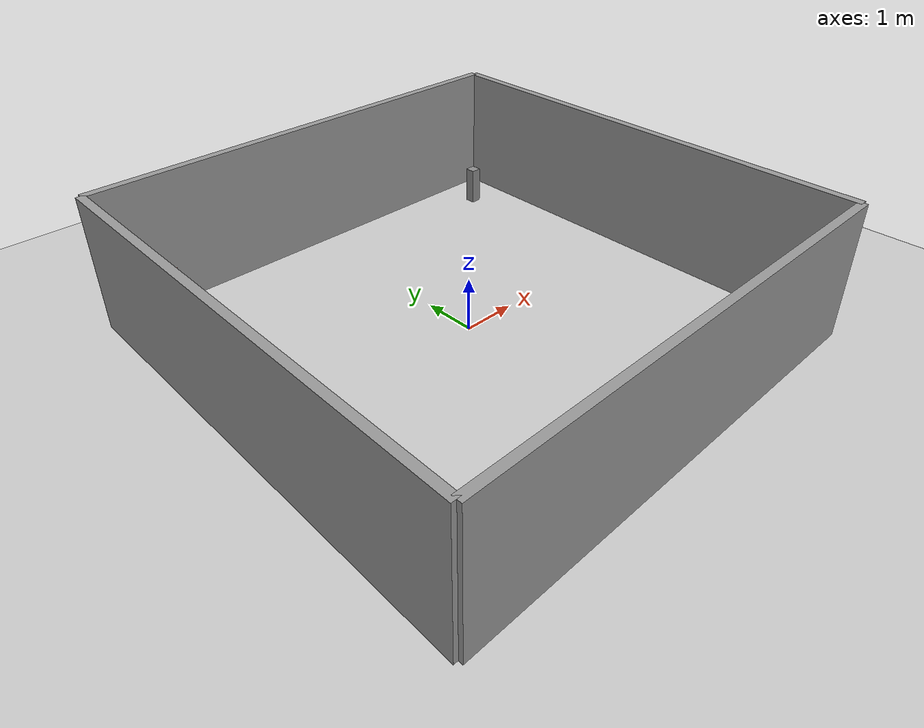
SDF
<sdf version="1.7">
 <world name="default">
  <plugin name="socnav_plugin" filename="libSocNavPlugin.so">
   <robot_name>robot</robot_name>
   <trajectory_file>/home/hunav_gz_classic_ws/SocNav3_trajectories/src5/000003370.json</trajectory_file>
   <human_slots>3</human_slots>
   <goal_angle_mesh>
    <angle_threshold>0.523598775598</angle_threshold>
    <uri>/home/hunav_gz_classic_ws/src/socnav_gazebo_reproducer/meshes/000003370_goal_angle_00.stl</uri>
   </goal_angle_mesh>
  </plugin>
  <light name="sun" type="directional">
   <pose>0 0 10 0 -0 0</pose>
   <diffuse>0.8 0.8 0.8 1</diffuse>
   <specular>0.2 0.2 0.2 1</specular>
   <attenuation>
    <range>1000</range>
    <constant>0.9</constant>
    <linear>0.01</linear>
    <quadratic>0.001</quadratic>
   </attenuation>
   <direction>-0.5 0.1 -0.9</direction>
   <spot><inner_angle>0</inner_angle><outer_angle>0</outer_angle><falloff>0</falloff></spot>
  </light>
  <model name="ground_plane">
   <static>1</static>
   <link name="link">
    <collision name="collision">
     <geometry><plane><normal>0 0 1</normal><size>100 100</size></plane></geometry>
     <surface><friction><ode><mu>100</mu><mu2>50</mu2></ode></friction></surface>
    </collision>
    <visual name="visual">
     <cast_shadows>0</cast_shadows>
     <geometry><plane><normal>0 0 1</normal><size>100 100</size></plane></geometry>
     <material>
      <script><uri>file://media/materials/scripts/kitchen.material</uri><name>Kitchen/CounterTop_H</name></script>
     </material>
    </visual>
   </link>
  </model>
  <gravity>0 0 -9.8</gravity>
  <magnetic_field>6e-06 2.3e-05 -4.2e-05</magnetic_field>
  <atmosphere type="adiabatic"/>
  <physics type="ode">
   <max_step_size>0.001</max_step_size>
   <real_time_factor>1</real_time_factor>
   <real_time_update_rate>1000</real_time_update_rate>
  </physics>
  <scene><ambient>0.4 0.4 0.4 1</ambient><background>0.7 0.7 0.7 1</background><shadows>1</shadows></scene>
  <audio><device>default</device></audio>
  <spherical_coordinates>
   <surface_model>EARTH_WGS84</surface_model>
   <latitude_deg>0</latitude_deg>
   <longitude_deg>0</longitude_deg>
   <elevation>0</elevation>
   <heading_deg>0</heading_deg>
  </spherical_coordinates>
  <model name="robot">
   <pose>-3.6999877561191363 3.6999875420968458 0.5 0 0 -0.8000960350036621</pose>
   <link name="link">
    <collision name="collision">
     <geometry><cylinder><radius>0.3499999940395355</radius><length>1.0</length></cylinder></geometry>
    </collision>
    <visual name="visual">
     <geometry><cylinder><radius>0.3499999940395355</radius><length>1.0</length></cylinder></geometry>
     <material><ambient>0.1 0.4 0.8 1</ambient><diffuse>0.1 0.4 0.8 1</diffuse></material>
    </visual>
    <visual name="robot_top">
     <pose>0 0 0.58 0 0 0</pose>
     <geometry><cylinder><radius>0.18899999678134918</radius><length>0.16</length></cylinder></geometry>
     <material><ambient>0.04 0.08 0.12 1</ambient><diffuse>0.04 0.08 0.12 1</diffuse></material>
    </visual>
    <visual name="robot_front">
     <pose>0.22049999624490738 0 0.44 0 0 0</pose>
     <geometry><box><size>0.12599999785423277 0.4479999923706055 0.24</size></box></geometry>
     <material><ambient>0.9 0.12 0.08 1</ambient><diffuse>0.9 0.12 0.08 1</diffuse></material>
    </visual>
    <visual name="robot_sensor">
     <pose>0 0 0.78 0 0 0</pose>
     <geometry><cylinder><radius>0.036749999374151236</radius><length>0.24</length></cylinder></geometry>
     <material><ambient>0.1 0.9 0.9 1</ambient><diffuse>0.1 0.9 0.9 1</diffuse></material>
    </visual>
   </link>
  </model>
  <model name="static_object_6">
   <static>true</static>
   <pose>3.5 3.5 0.375 0 0 0.0</pose>
   <link name="link">
    <collision name="collision"><geometry><box><size>0.2 0.2 0.75</size></box></geometry></collision>
    <visual name="visual">
     <geometry><box><size>0.2 0.2 0.75</size></box></geometry>
     <material><ambient>0.55 0.55 0.55 1</ambient><diffuse>0.55 0.55 0.55 1</diffuse></material>
    </visual>
   </link>
  </model>
  <model name="static_object_7">
   <static>true</static>
   <pose>-3.5 -3.5 0.375 0 0 0.0</pose>
   <link name="link">
    <collision name="collision"><geometry><box><size>0.2 0.2 0.75</size></box></geometry></collision>
    <visual name="visual">
     <geometry><box><size>0.2 0.2 0.75</size></box></geometry>
     <material><ambient>0.55 0.55 0.55 1</ambient><diffuse>0.55 0.55 0.55 1</diffuse></material>
    </visual>
   </link>
  </model>
  <model name="simple_world_test">
   <link name="Wall_0">
    <collision name="Wall_0_Collision">
     <geometry><box><size>8.7 0.15 2.5</size></box></geometry>
     <pose>0 0 1.25 0 -0 0</pose>
    </collision>
    <visual name="Wall_0_Visual">
     <pose>0 0 1.25 0 -0 0</pose>
     <geometry><box><size>8.7 0.15 2.5</size></box></geometry>
     <material>
      <script><uri>file://media/materials/scripts/gazebo.material</uri><name>Gazebo/Grey</name></script>
      <ambient>1 1 1 1</ambient>
     </material>
     <meta><layer>0</layer></meta>
    </visual>
    <pose>4.35 0.0 0 0 -0 1.5707963267948966</pose>
   </link>
   <link name="Wall_1">
    <collision name="Wall_1_Collision">
     <geometry><box><size>8.7 0.15 2.5</size></box></geometry>
     <pose>0 0 1.25 0 -0 0</pose>
    </collision>
    <visual name="Wall_1_Visual">
     <pose>0 0 1.25 0 -0 0</pose>
     <geometry><box><size>8.7 0.15 2.5</size></box></geometry>
     <material>
      <script><uri>file://media/materials/scripts/gazebo.material</uri><name>Gazebo/Grey</name></script>
      <ambient>1 1 1 1</ambient>
     </material>
     <meta><layer>0</layer></meta>
    </visual>
    <pose>-4.35 0.0 0 0 -0 1.5707963267948966</pose>
   </link>
   <link name="Wall_2">
    <collision name="Wall_2_Collision">
     <geometry><box><size>8.7 0.15 2.5</size></box></geometry>
     <pose>0 0 1.25 0 -0 0</pose>
    </collision>
    <visual name="Wall_2_Visual">
     <pose>0 0 1.25 0 -0 0</pose>
     <geometry><box><size>8.7 0.15 2.5</size></box></geometry>
     <material>
      <script><uri>file://media/materials/scripts/gazebo.material</uri><name>Gazebo/Grey</name></script>
      <ambient>1 1 1 1</ambient>
     </material>
     <meta><layer>0</layer></meta>
    </visual>
    <pose>0.0 4.35 0 0 -0 0.0</pose>
   </link>
   <link name="Wall_3">
    <collision name="Wall_3_Collision">
     <geometry><box><size>8.7 0.15 2.5</size></box></geometry>
     <pose>0 0 1.25 0 -0 0</pose>
    </collision>
    <visual name="Wall_3_Visual">
     <pose>0 0 1.25 0 -0 0</pose>
     <geometry><box><size>8.7 0.15 2.5</size></box></geometry>
     <material>
      <script><uri>file://media/materials/scripts/gazebo.material</uri><name>Gazebo/Grey</name></script>
      <ambient>1 1 1 1</ambient>
     </material>
     <meta><layer>0</layer></meta>
    </visual>
    <pose>0.0 -4.35 0 0 -0 0.0</pose>
   </link>
   <static>1</static>
  </model>
 </world>
</sdf>
